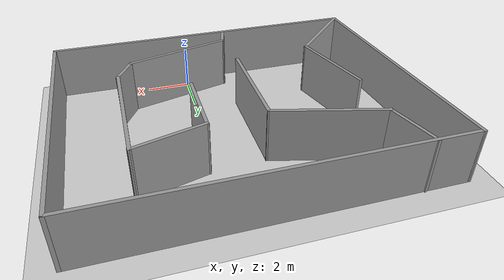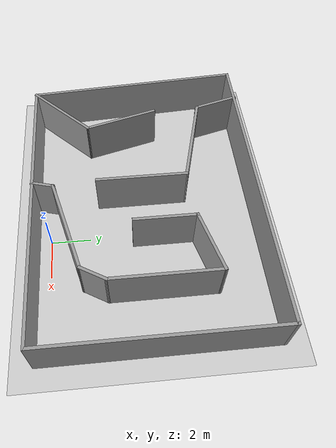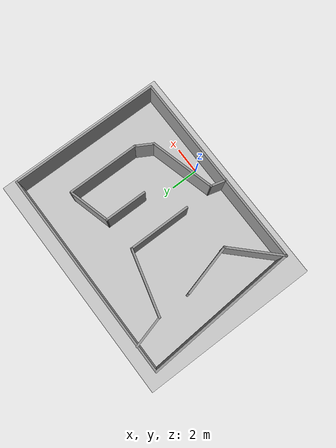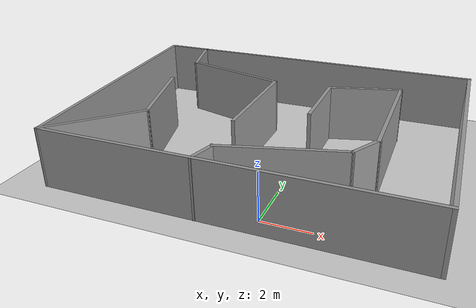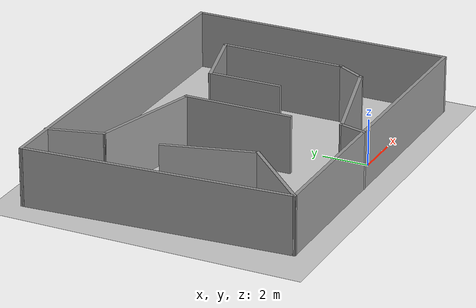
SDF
<sdf version="1.7">
 <world name="default">
  <light name="sun" type="directional">
   <pose>0 0 10 0 -0 0</pose>
   <diffuse>0.8 0.8 0.8 1</diffuse>
   <specular>0.2 0.2 0.2 1</specular>
   <attenuation>
    <range>1000</range>
    <constant>0.9</constant>
    <linear>0.01</linear>
    <quadratic>0.001</quadratic>
   </attenuation>
   <direction>-0.5 0.1 -0.9</direction>
   <spot><inner_angle>0</inner_angle><outer_angle>0</outer_angle><falloff>0</falloff></spot>
  </light>
  <model name="ground_plane">
   <static>1</static>
   <link name="link">
    <collision name="collision">
     <geometry><plane><normal>0 0 1</normal><size>100 100</size></plane></geometry>
     <surface>
      <contact><collide_bitmask>65535</collide_bitmask></contact>
      <friction><ode><mu>100</mu><mu2>50</mu2></ode></friction>
     </surface>
    </collision>
    <visual name="visual">
     <cast_shadows>0</cast_shadows>
     <geometry><plane><normal>0 0 1</normal><size>100 100</size></plane></geometry>
     <material>
      <script><uri>file://media/materials/scripts/gazebo.material</uri><name>Gazebo/Grey</name></script>
     </material>
    </visual>
   </link>
  </model>
  <gravity>0 0 -9.8</gravity>
  <magnetic_field>6e-06 2.3e-05 -4.2e-05</magnetic_field>
  <atmosphere type="adiabatic"/>
  <physics type="ode">
   <max_step_size>0.001</max_step_size>
   <real_time_factor>1</real_time_factor>
   <real_time_update_rate>1000</real_time_update_rate>
  </physics>
  <scene><ambient>0.4 0.4 0.4 1</ambient><background>0.7 0.7 0.7 1</background><shadows>1</shadows></scene>
  <audio><device>default</device></audio>
  <spherical_coordinates>
   <surface_model>EARTH_WGS84</surface_model>
   <latitude_deg>0</latitude_deg>
   <longitude_deg>0</longitude_deg>
   <elevation>0</elevation>
   <heading_deg>0</heading_deg>
  </spherical_coordinates>
  <model name="Untitled">
   <pose>-1.53256 4.9929 0 0 -0 0</pose>
   <link name="Wall_0">
    <collision name="Wall_0_Collision">
     <geometry><box><size>15 0.15 2.5</size></box></geometry>
     <pose>0 0 1.25 0 -0 0</pose>
    </collision>
    <visual name="Wall_0_Visual">
     <pose>0 0 1.25 0 -0 0</pose>
     <geometry><box><size>15 0.15 2.5</size></box></geometry>
     <material>
      <script><uri>file://media/materials/scripts/gazebo.material</uri><name>Gazebo/Grey</name></script>
      <ambient>1 1 1 1</ambient>
     </material>
     <meta><layer>0</layer></meta>
    </visual>
    <pose>0.377391 -5.683 0 0 -0 0</pose>
   </link>
   <link name="Wall_1">
    <collision name="Wall_1_Collision">
     <geometry><box><size>11.5 0.15 2.5</size></box></geometry>
     <pose>0 0 1.25 0 -0 0</pose>
    </collision>
    <visual name="Wall_1_Visual">
     <pose>0 0 1.25 0 -0 0</pose>
     <geometry><box><size>11.5 0.15 2.5</size></box></geometry>
     <material>
      <script><uri>file://media/materials/scripts/gazebo.material</uri><name>Gazebo/Grey</name></script>
      <ambient>1 1 1 1</ambient>
     </material>
     <meta><layer>0</layer></meta>
    </visual>
    <pose>7.80239 -0.008003 0 0 -0 1.5708</pose>
   </link>
   <link name="Wall_12">
    <collision name="Wall_12_Collision">
     <geometry><box><size>1.25 0.15 2.5</size></box></geometry>
     <pose>0 0 1.25 0 -0 0</pose>
    </collision>
    <visual name="Wall_12_Visual">
     <pose>0 0 1.25 0 -0 0</pose>
     <geometry><box><size>1.25 0.15 2.5</size></box></geometry>
     <material>
      <script><uri>file://media/materials/scripts/gazebo.material</uri><name>Gazebo/Grey</name></script>
      <ambient>1 1 1 1</ambient>
     </material>
     <meta><layer>0</layer></meta>
    </visual>
    <pose>-0.468935 -5.16138 0 0 -0 1.309</pose>
   </link>
   <link name="Wall_13">
    <collision name="Wall_13_Collision">
     <geometry><box><size>5 0.15 2.5</size></box></geometry>
     <pose>0 0 1.25 0 -0 0</pose>
    </collision>
    <visual name="Wall_13_Visual">
     <pose>0 0 1.25 0 -0 0</pose>
     <geometry><box><size>5 0.15 2.5</size></box></geometry>
     <material>
      <script><uri>file://media/materials/scripts/gazebo.material</uri><name>Gazebo/Grey</name></script>
      <ambient>1 1 1 1</ambient>
     </material>
     <meta><layer>0</layer></meta>
    </visual>
    <pose>2.01579 -4.00248 0 0 -0 0.261799</pose>
   </link>
   <link name="Wall_14">
    <collision name="Wall_14_Collision">
     <geometry><box><size>1.5 0.15 2.5</size></box></geometry>
     <pose>0 0 1.25 0 -0 0</pose>
    </collision>
    <visual name="Wall_14_Visual">
     <pose>0 0 1.25 0 -0 0</pose>
     <geometry><box><size>1.5 0.15 2.5</size></box></geometry>
     <material>
      <script><uri>file://media/materials/scripts/gazebo.material</uri><name>Gazebo/Grey</name></script>
      <ambient>1 1 1 1</ambient>
     </material>
     <meta><layer>0</layer></meta>
    </visual>
    <pose>4.69566 -2.79028 0 0 -0 1.0472</pose>
   </link>
   <link name="Wall_15">
    <collision name="Wall_15_Collision">
     <geometry><box><size>5.5 0.15 2.5</size></box></geometry>
     <pose>0 0 1.25 0 -0 0</pose>
    </collision>
    <visual name="Wall_15_Visual">
     <pose>0 0 1.25 0 -0 0</pose>
     <geometry><box><size>5.5 0.15 2.5</size></box></geometry>
     <material>
      <script><uri>file://media/materials/scripts/gazebo.material</uri><name>Gazebo/Grey</name></script>
      <ambient>1 1 1 1</ambient>
     </material>
     <meta><layer>0</layer></meta>
    </visual>
    <pose>5.03316 0.469288 0 0 -0 1.5708</pose>
   </link>
   <link name="Wall_16">
    <collision name="Wall_16_Collision">
     <geometry><box><size>3.25 0.15 2.5</size></box></geometry>
     <pose>0 0 1.25 0 -0 0</pose>
    </collision>
    <visual name="Wall_16_Visual">
     <pose>0 0 1.25 0 -0 0</pose>
     <geometry><box><size>3.25 0.15 2.5</size></box></geometry>
     <material>
      <script><uri>file://media/materials/scripts/gazebo.material</uri><name>Gazebo/Grey</name></script>
      <ambient>1 1 1 1</ambient>
     </material>
     <meta><layer>0</layer></meta>
    </visual>
    <pose>3.53597 2.74312 0 0 -0 -2.87979</pose>
   </link>
   <link name="Wall_17">
    <collision name="Wall_17_Collision">
     <geometry><box><size>3.25 0.15 2.5</size></box></geometry>
     <pose>0 0 1.25 0 -0 0</pose>
    </collision>
    <visual name="Wall_17_Visual">
     <pose>0 0 1.25 0 -0 0</pose>
     <geometry><box><size>3.25 0.15 2.5</size></box></geometry>
     <material>
      <script><uri>file://media/materials/scripts/gazebo.material</uri><name>Gazebo/Grey</name></script>
      <ambient>1 1 1 1</ambient>
     </material>
     <meta><layer>0</layer></meta>
    </visual>
    <pose>2.03879 0.791949 0 0 -0 -1.5708</pose>
   </link>
   <link name="Wall_2">
    <collision name="Wall_2_Collision">
     <geometry><box><size>15.75 0.15 2.5</size></box></geometry>
     <pose>0 0 1.25 0 -0 0</pose>
    </collision>
    <visual name="Wall_2_Visual">
     <pose>0 0 1.25 0 -0 0</pose>
     <geometry><box><size>15.75 0.15 2.5</size></box></geometry>
     <material>
      <script><uri>file://media/materials/scripts/gazebo.material</uri><name>Gazebo/Grey</name></script>
      <ambient>1 1 1 1</ambient>
     </material>
     <meta><layer>0</layer></meta>
    </visual>
    <pose>0.002391 5.667 0 0 -0 3.14159</pose>
   </link>
   <link name="Wall_3">
    <collision name="Wall_3_Collision">
     <geometry><box><size>11.5248 0.15 2.5</size></box></geometry>
     <pose>0 0 1.25 0 -0 0</pose>
    </collision>
    <visual name="Wall_3_Visual">
     <pose>0 0 1.25 0 -0 0</pose>
     <geometry><box><size>11.5248 0.15 2.5</size></box></geometry>
     <material>
      <script><uri>file://media/materials/scripts/gazebo.material</uri><name>Gazebo/Grey</name></script>
      <ambient>1 1 1 1</ambient>
     </material>
     <meta><layer>0</layer></meta>
    </visual>
    <pose>-7.42261 -0.008003 0 0 -0 -1.50481</pose>
   </link>
   <link name="Wall_4">
    <collision name="Wall_4_Collision">
     <geometry><box><size>4.25 0.15 2.5</size></box></geometry>
     <pose>0 0 1.25 0 -0 0</pose>
    </collision>
    <visual name="Wall_4_Visual">
     <pose>0 0 1.25 0 -0 0</pose>
     <geometry><box><size>4.25 0.15 2.5</size></box></geometry>
     <material>
      <script><uri>file://media/materials/scripts/gazebo.material</uri><name>Gazebo/Grey</name></script>
      <ambient>1 1 1 1</ambient>
     </material>
     <meta><layer>0</layer></meta>
    </visual>
    <pose>-5.59804 -4.23344 0 0 -0 0.785398</pose>
   </link>
   <link name="Wall_5">
    <collision name="Wall_5_Collision">
     <geometry><box><size>4 0.15 2.5</size></box></geometry>
     <pose>0 0 1.25 0 -0 0</pose>
    </collision>
    <visual name="Wall_5_Visual">
     <pose>0 0 1.25 0 -0 0</pose>
     <geometry><box><size>4 0.15 2.5</size></box></geometry>
     <material>
      <script><uri>file://media/materials/scripts/gazebo.material</uri><name>Gazebo/Grey</name></script>
      <ambient>1 1 1 1</ambient>
     </material>
     <meta><layer>0</layer></meta>
    </visual>
    <pose>-4.6467 -0.924458 0 0 -0 1.8326</pose>
   </link>
   <link name="Wall_7">
    <collision name="Wall_7_Collision">
     <geometry><box><size>2.5 0.15 2.5</size></box></geometry>
     <pose>0 0 1.25 0 -0 0</pose>
    </collision>
    <visual name="Wall_7_Visual">
     <pose>0 0 1.25 0 -0 0</pose>
     <geometry><box><size>2.5 0.15 2.5</size></box></geometry>
     <material>
      <script><uri>file://media/materials/scripts/gazebo.material</uri><name>Gazebo/Grey</name></script>
      <ambient>1 1 1 1</ambient>
     </material>
     <meta><layer>0</layer></meta>
    </visual>
    <pose>-5.49641 4.56225 0 0 -0 -1.309</pose>
   </link>
   <link name="Wall_8">
    <collision name="Wall_8_Collision">
     <geometry><box><size>5 0.15 2.5</size></box></geometry>
     <pose>0 0 1.25 0 -0 0</pose>
    </collision>
    <visual name="Wall_8_Visual">
     <pose>0 0 1.25 0 -0 0</pose>
     <geometry><box><size>5 0.15 2.5</size></box></geometry>
     <material>
      <script><uri>file://media/materials/scripts/gazebo.material</uri><name>Gazebo/Grey</name></script>
      <ambient>1 1 1 1</ambient>
     </material>
     <meta><layer>0</layer></meta>
    </visual>
    <pose>-2.84993 2.79965 0 0 -0 -0.261799</pose>
   </link>
   <link name="Wall_9">
    <collision name="Wall_9_Collision">
     <geometry><box><size>4.75 0.15 2.5</size></box></geometry>
     <pose>0 0 1.25 0 -0 0</pose>
    </collision>
    <visual name="Wall_9_Visual">
     <pose>0 0 1.25 0 -0 0</pose>
     <geometry><box><size>4.75 0.15 2.5</size></box></geometry>
     <material>
      <script><uri>file://media/materials/scripts/gazebo.material</uri><name>Gazebo/Grey</name></script>
      <ambient>1 1 1 1</ambient>
     </material>
     <meta><layer>0</layer></meta>
    </visual>
    <pose>-0.507558 -0.127984 0 0 -0 -1.5708</pose>
   </link>
   <static>1</static>
  </model>
 </world>
</sdf>
